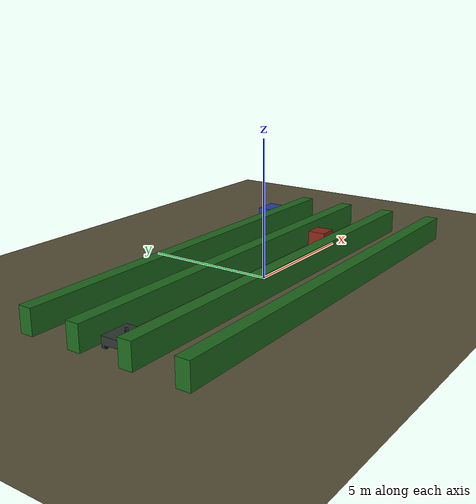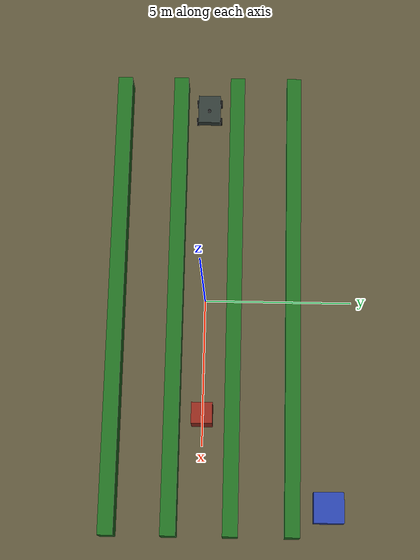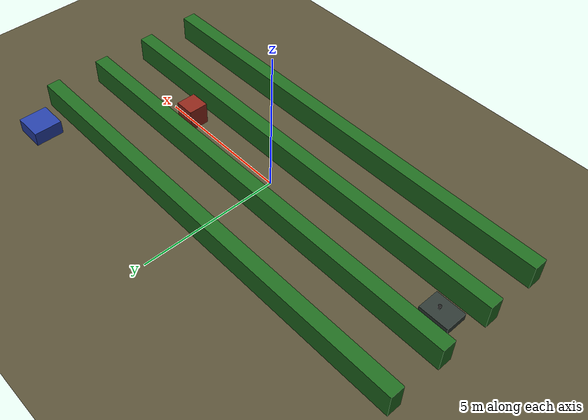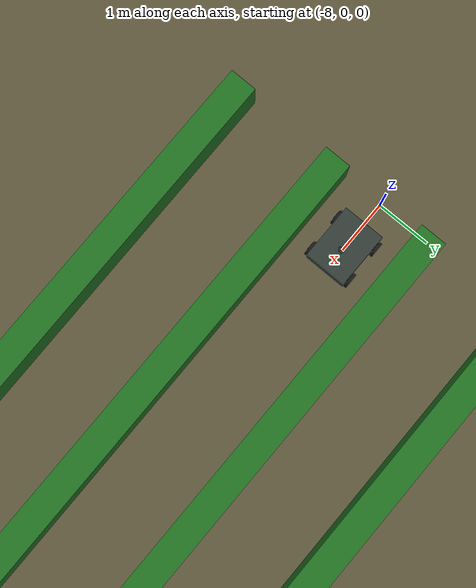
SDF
<?xml version="1.0"?>
<sdf version="1.8">
  <world name="agt_agri_validation">
    <physics name="default_physics" type="ignored">
      <max_step_size>0.001</max_step_size>
      <real_time_factor>1.0</real_time_factor>
    </physics>

    <plugin filename="libignition-gazebo-physics-system.so" name="ignition::gazebo::systems::Physics"/>
    <plugin filename="libignition-gazebo-user-commands-system.so" name="ignition::gazebo::systems::UserCommands"/>
    <plugin filename="libignition-gazebo-scene-broadcaster-system.so" name="ignition::gazebo::systems::SceneBroadcaster"/>
    <plugin filename="libignition-gazebo-sensors-system.so" name="ignition::gazebo::systems::Sensors">
      <render_engine>ogre2</render_engine>
    </plugin>
    <!-- Fortress requires the IMU system in addition to the rendering Sensors system. -->
    <plugin filename="libignition-gazebo-imu-system.so" name="ignition::gazebo::systems::Imu"/>

    <light type="directional" name="sun">
      <pose>0 0 10 0 0 0</pose>
      <diffuse>0.8 0.8 0.8 1</diffuse>
      <specular>0.2 0.2 0.2 1</specular>
      <direction>-0.5 0.1 -0.9</direction>
    </light>

    <model name="ground_plane">
      <static>true</static>
      <link name="link">
        <collision name="collision"><geometry><plane><normal>0 0 1</normal><size>30 20</size></plane></geometry></collision>
        <visual name="visual">
          <geometry><plane><normal>0 0 1</normal><size>30 20</size></plane></geometry>
          <material><diffuse>0.35 0.32 0.22 1</diffuse></material>
        </visual>
      </link>
    </model>

    <!-- Four simple crop rows. These are geometric test fixtures, not a photorealistic field. -->
    <model name="crop_row_north_outer"><static>true</static><pose>0 3 0.45 0 0 0</pose><link name="row"><collision name="c"><geometry><box><size>16 0.5 0.9</size></box></geometry></collision><visual name="v"><geometry><box><size>16 0.5 0.9</size></box></geometry><material><diffuse>0.12 0.42 0.12 1</diffuse></material></visual></link></model>
    <model name="crop_row_north_inner"><static>true</static><pose>0 1 0.45 0 0 0</pose><link name="row"><collision name="c"><geometry><box><size>16 0.5 0.9</size></box></geometry></collision><visual name="v"><geometry><box><size>16 0.5 0.9</size></box></geometry><material><diffuse>0.12 0.42 0.12 1</diffuse></material></visual></link></model>
    <model name="crop_row_south_inner"><static>true</static><pose>0 -1 0.45 0 0 0</pose><link name="row"><collision name="c"><geometry><box><size>16 0.5 0.9</size></box></geometry></collision><visual name="v"><geometry><box><size>16 0.5 0.9</size></box></geometry><material><diffuse>0.12 0.42 0.12 1</diffuse></material></visual></link></model>
    <model name="crop_row_south_outer"><static>true</static><pose>0 -3 0.45 0 0 0</pose><link name="row"><collision name="c"><geometry><box><size>16 0.5 0.9</size></box></geometry></collision><visual name="v"><geometry><box><size>16 0.5 0.9</size></box></geometry><material><diffuse>0.12 0.42 0.12 1</diffuse></material></visual></link></model>

    <model name="fixed_obstacle"><static>true</static><pose>4 0 0.4 0 0 0</pose><link name="box"><collision name="c"><geometry><box><size>0.7 0.7 0.8</size></box></geometry></collision><visual name="v"><geometry><box><size>0.7 0.7 0.8</size></box></geometry><material><diffuse>0.55 0.15 0.10 1</diffuse></material></visual></link></model>

    <model name="headland_marker"><static>true</static><pose>7 4.2 0.25 0 0 0</pose><link name="box"><collision name="c"><geometry><box><size>1.0 1.0 0.5</size></box></geometry></collision><visual name="v"><geometry><box><size>1.0 1.0 0.5</size></box></geometry><material><diffuse>0.15 0.25 0.65 1</diffuse></material></visual></link></model>

    <include>
      <uri>model://bunker_sim</uri>
      <name>bunker_sim</name>
      <pose>-7 0 0 0 0 0</pose>
    </include>
  </world>
</sdf>

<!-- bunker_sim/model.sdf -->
<sdf version="1.8">
  <model name="bunker_sim" canonical_link="base_link">
    <!-- SOFTWARE_ONLY proxy. Do not treat these dynamics as field acceptance. -->
    <pose>0 0 0 0 0 0</pose>
    <self_collide>false</self_collide>

    <link name="base_link">
      <pose>0 0 0.34 0 0 0</pose>
      <inertial>
        <mass>100.0</mass>
        <inertia>
          <ixx>8.0</ixx><iyy>10.0</iyy><izz>12.0</izz>
          <ixy>0.0</ixy><ixz>0.0</ixz><iyz>0.0</iyz>
        </inertia>
      </inertial>
      <collision name="collision">
        <geometry><box><size>1.023 0.778 0.26</size></box></geometry>
      </collision>
      <visual name="visual">
        <geometry><box><size>1.023 0.778 0.26</size></box></geometry>
        <material><diffuse>0.18 0.22 0.20 1</diffuse></material>
      </visual>
      <visual name="lidar_mount_visual">
        <pose>0.10 0 0.145 0 0 0</pose>
        <geometry><box><size>0.08 0.08 0.03</size></box></geometry>
        <material><diffuse>0.10 0.10 0.10 1</diffuse></material>
      </visual>
    </link>

    <link name="front_left_wheel">
      <pose>0.34 0.40 0.14 -1.57079632679 0 0</pose>
      <inertial><mass>4.0</mass><inertia><ixx>0.04</ixx><iyy>0.04</iyy><izz>0.04</izz></inertia></inertial>
      <collision name="collision">
        <geometry><cylinder><radius>0.14</radius><length>0.10</length></cylinder></geometry>
        <surface><friction><ode><mu>1.0</mu><mu2>1.0</mu2><slip1>0.02</slip1><slip2>0.02</slip2></ode></friction></surface>
      </collision>
      <visual name="visual"><geometry><cylinder><radius>0.14</radius><length>0.10</length></cylinder></geometry><material><diffuse>0.08 0.08 0.08 1</diffuse></material></visual>
    </link>
    <link name="rear_left_wheel">
      <pose>-0.34 0.40 0.14 -1.57079632679 0 0</pose>
      <inertial><mass>4.0</mass><inertia><ixx>0.04</ixx><iyy>0.04</iyy><izz>0.04</izz></inertia></inertial>
      <collision name="collision">
        <geometry><cylinder><radius>0.14</radius><length>0.10</length></cylinder></geometry>
        <surface><friction><ode><mu>1.0</mu><mu2>1.0</mu2><slip1>0.02</slip1><slip2>0.02</slip2></ode></friction></surface>
      </collision>
      <visual name="visual"><geometry><cylinder><radius>0.14</radius><length>0.10</length></cylinder></geometry><material><diffuse>0.08 0.08 0.08 1</diffuse></material></visual>
    </link>
    <link name="front_right_wheel">
      <pose>0.34 -0.40 0.14 -1.57079632679 0 0</pose>
      <inertial><mass>4.0</mass><inertia><ixx>0.04</ixx><iyy>0.04</iyy><izz>0.04</izz></inertia></inertial>
      <collision name="collision">
        <geometry><cylinder><radius>0.14</radius><length>0.10</length></cylinder></geometry>
        <surface><friction><ode><mu>1.0</mu><mu2>1.0</mu2><slip1>0.02</slip1><slip2>0.02</slip2></ode></friction></surface>
      </collision>
      <visual name="visual"><geometry><cylinder><radius>0.14</radius><length>0.10</length></cylinder></geometry><material><diffuse>0.08 0.08 0.08 1</diffuse></material></visual>
    </link>
    <link name="rear_right_wheel">
      <pose>-0.34 -0.40 0.14 -1.57079632679 0 0</pose>
      <inertial><mass>4.0</mass><inertia><ixx>0.04</ixx><iyy>0.04</iyy><izz>0.04</izz></inertia></inertial>
      <collision name="collision">
        <geometry><cylinder><radius>0.14</radius><length>0.10</length></cylinder></geometry>
        <surface><friction><ode><mu>1.0</mu><mu2>1.0</mu2><slip1>0.02</slip1><slip2>0.02</slip2></ode></friction></surface>
      </collision>
      <visual name="visual"><geometry><cylinder><radius>0.14</radius><length>0.10</length></cylinder></geometry><material><diffuse>0.08 0.08 0.08 1</diffuse></material></visual>
    </link>

    <!-- SDFormat defines a joint pose without @relative_to in the child-link
         frame by default. Keep the axis explicitly expressed in the model frame. -->
    <joint name="front_left_joint" type="revolute">
      <pose/>
      <parent>base_link</parent><child>front_left_wheel</child>
      <axis><xyz expressed_in="__model__">0 1 0</xyz><limit><lower>-1.79769e+308</lower><upper>1.79769e+308</upper></limit></axis>
    </joint>
    <joint name="rear_left_joint" type="revolute">
      <pose/>
      <parent>base_link</parent><child>rear_left_wheel</child>
      <axis><xyz expressed_in="__model__">0 1 0</xyz><limit><lower>-1.79769e+308</lower><upper>1.79769e+308</upper></limit></axis>
    </joint>
    <joint name="front_right_joint" type="revolute">
      <pose/>
      <parent>base_link</parent><child>front_right_wheel</child>
      <axis><xyz expressed_in="__model__">0 1 0</xyz><limit><lower>-1.79769e+308</lower><upper>1.79769e+308</upper></limit></axis>
    </joint>
    <joint name="rear_right_joint" type="revolute">
      <pose/>
      <parent>base_link</parent><child>rear_right_wheel</child>
      <axis><xyz expressed_in="__model__">0 1 0</xyz><limit><lower>-1.79769e+308</lower><upper>1.79769e+308</upper></limit></axis>
    </joint>

    <link name="lidar_link">
      <pose>0.10 0 0.535 0 0 0</pose>
      <visual name="visual">
        <geometry><cylinder><radius>0.055</radius><length>0.07</length></cylinder></geometry>
        <material><diffuse>0.12 0.12 0.12 1</diffuse></material>
      </visual>
      <sensor name="navigation_lidar" type="gpu_lidar">
        <topic>/simulation/bunker/scan</topic>
        <update_rate>10</update_rate>
        <lidar>
          <scan>
            <horizontal>
              <samples>720</samples><resolution>1</resolution>
              <min_angle>-3.14159265359</min_angle><max_angle>3.14159265359</max_angle>
            </horizontal>
          </scan>
          <range><min>0.10</min><max>30.0</max><resolution>0.02</resolution></range>
          <noise><type>gaussian</type><mean>0.0</mean><stddev>0.01</stddev></noise>
        </lidar>
        <always_on>true</always_on>
        <visualize>true</visualize>
      </sensor>
    </link>
    <joint name="lidar_fixed_joint" type="fixed"><parent>base_link</parent><child>lidar_link</child></joint>

    <link name="imu_link">
      <pose>0 0 0.42 0 0 0</pose>
      <sensor name="navigation_imu" type="imu">
        <topic>/simulation/bunker/imu</topic>
        <update_rate>100</update_rate>
        <always_on>true</always_on>
      </sensor>
    </link>
    <joint name="imu_fixed_joint" type="fixed"><parent>base_link</parent><child>imu_link</child></joint>

    <plugin filename="libignition-gazebo-diff-drive-system.so" name="ignition::gazebo::systems::DiffDrive">
      <left_joint>front_left_joint</left_joint>
      <left_joint>rear_left_joint</left_joint>
      <right_joint>front_right_joint</right_joint>
      <right_joint>rear_right_joint</right_joint>
      <wheel_separation>0.80</wheel_separation>
      <wheel_radius>0.14</wheel_radius>
      <topic>/model/bunker_sim/cmd_vel</topic>
      <odom_topic>/model/bunker_sim/odometry</odom_topic>
      <tf_topic>/model/bunker_sim/tf</tf_topic>
      <frame_id>odom</frame_id>
      <child_frame_id>base_footprint</child_frame_id>
      <odom_publish_frequency>30</odom_publish_frequency>
      <max_linear_acceleration>0.8</max_linear_acceleration>
      <max_angular_acceleration>1.0</max_angular_acceleration>
    </plugin>

    <plugin filename="libignition-gazebo-odometry-publisher-system.so" name="ignition::gazebo::systems::OdometryPublisher">
      <odom_frame>world</odom_frame>
      <robot_base_frame>base_link</robot_base_frame>
      <odom_publish_frequency>30</odom_publish_frequency>
      <odom_topic>/model/bunker_sim/ground_truth</odom_topic>
      <tf_topic>/model/bunker_sim/ground_truth_tf</tf_topic>
      <dimensions>2</dimensions>
      <gaussian_noise>0.0</gaussian_noise>
    </plugin>

    <plugin filename="libignition-gazebo-joint-state-publisher-system.so" name="ignition::gazebo::systems::JointStatePublisher"/>
  </model>
</sdf>
